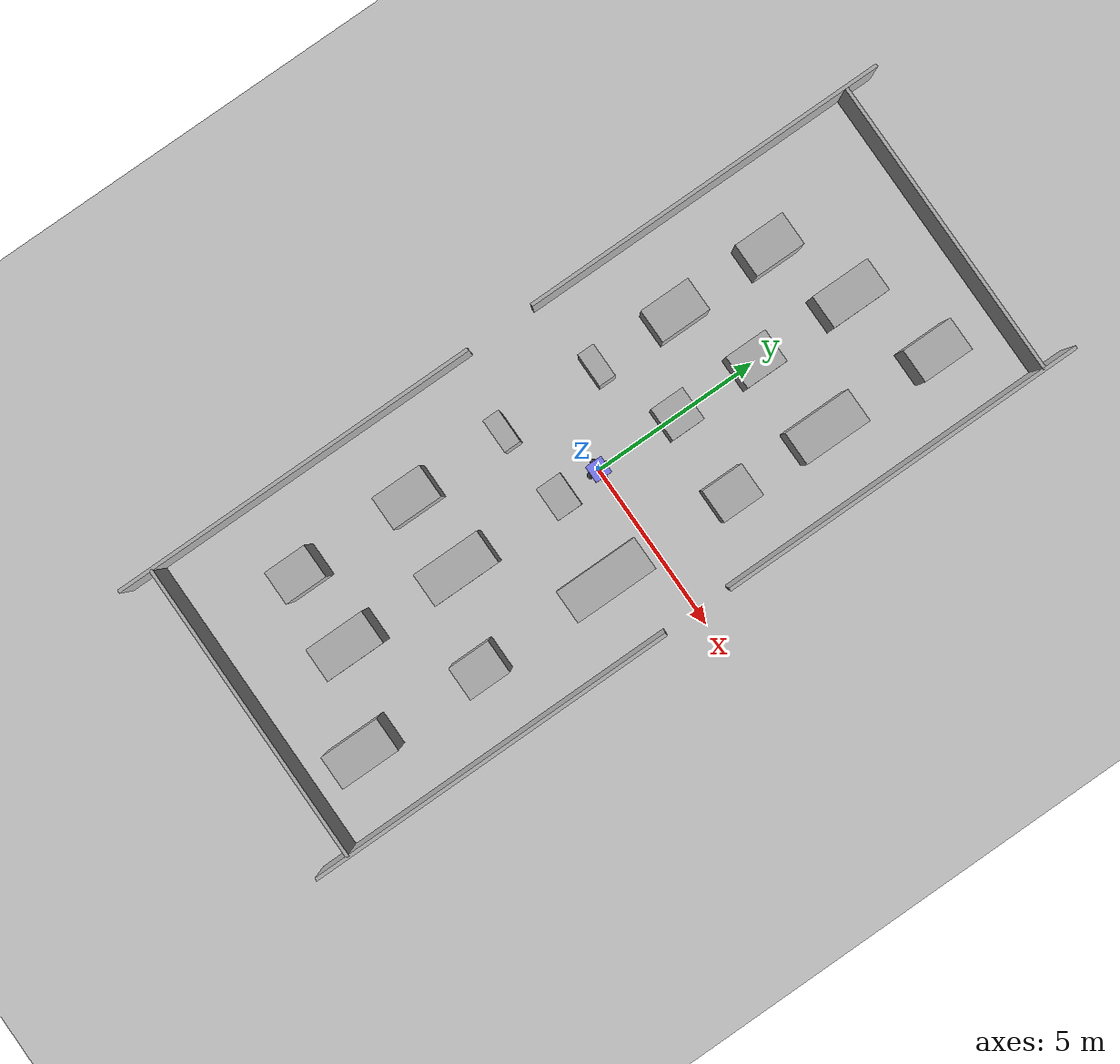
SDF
<?xml version="1.0" ?>
<sdf version="1.8">
  <world name="demo">
    <physics name="1ms" type="ignored">
      <max_step_size>0.001</max_step_size>
      <real_time_factor>1.0</real_time_factor>
    </physics>
    <plugin
      filename="gz-sim-physics-system"
      name="gz::sim::systems::Physics">
    </plugin>
    <plugin
      filename="gz-sim-sensors-system"
      name="gz::sim::systems::Sensors">
      <render_engine>ogre2</render_engine>
    </plugin>
    <plugin
      filename="gz-sim-imu-system"
      name="gz::sim::systems::Imu">
    </plugin>
    <plugin
      filename="gz-sim-scene-broadcaster-system"
      name="gz::sim::systems::SceneBroadcaster">
    </plugin>
    <plugin
      filename="gz-sim-user-commands-system"
      name="gz::sim::systems::UserCommands">
    </plugin>

    <light name="sun" type="directional">
      <cast_shadows>true</cast_shadows>
      <pose>0 0 10 0 0 0</pose>
      <diffuse>0.8 0.8 0.8 1</diffuse>
      <specular>0.2 0.2 0.2 1</specular>
      <attenuation>
        <range>1000</range>
        <constant>0.9</constant>
        <linear>0.01</linear>
        <quadratic>0.001</quadratic>
      </attenuation>
      <direction>-0.5 0.1 -0.9</direction>
    </light>

    <model name="ground_plane">
      <static>true</static>
      <link name="link">
        <collision name="collision">
          <geometry>
            <plane>
              <normal>0 0 1</normal>
              <size>100 100</size>
            </plane>
          </geometry>
        </collision>
        <visual name="visual">
          <geometry>
            <plane>
              <normal>0 0 1</normal>
              <size>100 100</size>
            </plane>
          </geometry>
          <material>
            <ambient>0.8 0.8 0.8 1</ambient>
            <diffuse>0.8 0.8 0.8 1</diffuse>
            <specular>0.8 0.8 0.8 1</specular>
          </material>
        </visual>
      </link>
    </model>

    <!-- Section 0 -->
    <model name='barrier_up_left'>
      <pose>4.5 -6.5 0.5 0.0 0.0 0.0</pose>
      <link name='barrier_up_left_link'>
        <inertial>
          <inertia>
            <ixx>0.16666</ixx>
            <ixy>0</ixy>
            <ixz>0</ixz>
            <iyy>0.16666</iyy>
            <iyz>0</iyz>
            <izz>0.16666</izz>
          </inertia>
          <mass>1</mass>
          <pose>0 0 0 0 0 0</pose>
        </inertial>
        <collision name='box_collision'>
          <geometry>
            <box>
              <size>0.1 11.0 1</size>
            </box>
          </geometry>
          <surface>
            <friction>
              <ode/>
            </friction>
            <bounce/>
            <contact/>
          </surface>
        </collision>
        <visual name='box_visual'>
          <geometry>
            <box>
              <size>0.1 11.0 1</size>
            </box>
          </geometry>
          <material>
            <ambient>0.300000012 0.300000012 0.300000012 1</ambient>
            <diffuse>0.699999988 0.699999988 0.699999988 1</diffuse>
            <specular>1 1 1 1</specular>
          </material>
        </visual>
        <pose>0 0 0 0 0 0</pose>
        <enable_wind>false</enable_wind>
      </link>
      <static>true</static>
      <self_collide>false</self_collide>
    </model>

    <model name='barrier_up_right'>
      <pose>4.5 6.5 0.5 0.0 0.0 0.0</pose>
      <link name='barrier_up_right_link'>
        <inertial>
          <inertia>
            <ixx>0.16666</ixx>
            <ixy>0</ixy>
            <ixz>0</ixz>
            <iyy>0.16666</iyy>
            <iyz>0</iyz>
            <izz>0.16666</izz>
          </inertia>
          <mass>1</mass>
          <pose>0 0 0 0 0 0</pose>
        </inertial>
        <collision name='box_collision'>
          <geometry>
            <box>
              <size>0.1 11.0 1</size>
            </box>
          </geometry>
          <surface>
            <friction>
              <ode/>
            </friction>
            <bounce/>
            <contact/>
          </surface>
        </collision>
        <visual name='box_visual'>
          <geometry>
            <box>
              <size>0.1 11.0 1</size>
            </box>
          </geometry>
          <material>
            <ambient>0.300000012 0.300000012 0.300000012 1</ambient>
            <diffuse>0.699999988 0.699999988 0.699999988 1</diffuse>
            <specular>1 1 1 1</specular>
          </material>
        </visual>
        <pose>0 0 0 0 0 0</pose>
        <enable_wind>false</enable_wind>
      </link>
      <static>true</static>
      <self_collide>false</self_collide>
    </model>

    <model name='barrier_down_left'>
      <pose>-4.5 -6.5 0.5 0.0 0.0 0.0</pose>
      <link name='barrier_down_left_link'>
        <inertial>
          <inertia>
            <ixx>0.16666</ixx>
            <ixy>0</ixy>
            <ixz>0</ixz>
            <iyy>0.16666</iyy>
            <iyz>0</iyz>
            <izz>0.16666</izz>
          </inertia>
          <mass>1</mass>
          <pose>0 0 0 0 0 0</pose>
        </inertial>
        <collision name='box_collision'>
          <geometry>
            <box>
              <size>0.1 11.0 1</size>
            </box>
          </geometry>
          <surface>
            <friction>
              <ode/>
            </friction>
            <bounce/>
            <contact/>
          </surface>
        </collision>
        <visual name='box_visual'>
          <geometry>
            <box>
              <size>0.1 11.0 1</size>
            </box>
          </geometry>
          <material>
            <ambient>0.300000012 0.300000012 0.300000012 1</ambient>
            <diffuse>0.699999988 0.699999988 0.699999988 1</diffuse>
            <specular>1 1 1 1</specular>
          </material>
        </visual>
        <pose>0 0 0 0 0 0</pose>
        <enable_wind>false</enable_wind>
      </link>
      <static>true</static>
      <self_collide>false</self_collide>
    </model>

    <model name='barrier_down_right'>
      <pose>-4.5 6.5 0.5 0.0 0.0 0.0</pose>
      <link name='barrier_down_right_link'>
        <inertial>
          <inertia>
            <ixx>0.16666</ixx>
            <ixy>0</ixy>
            <ixz>0</ixz>
            <iyy>0.16666</iyy>
            <iyz>0</iyz>
            <izz>0.16666</izz>
          </inertia>
          <mass>1</mass>
          <pose>0 0 0 0 0 0</pose>
        </inertial>
        <collision name='box_collision'>
          <geometry>
            <box>
              <size>0.1 11.0 1</size>
            </box>
          </geometry>
          <surface>
            <friction>
              <ode/>
            </friction>
            <bounce/>
            <contact/>
          </surface>
        </collision>
        <visual name='box_visual'>
          <geometry>
            <box>
              <size>0.1 11.0 1</size>
            </box>
          </geometry>
          <material>
            <ambient>0.300000012 0.300000012 0.300000012 1</ambient>
            <diffuse>0.699999988 0.699999988 0.699999988 1</diffuse>
            <specular>1 1 1 1</specular>
          </material>
        </visual>
        <pose>0 0 0 0 0 0</pose>
        <enable_wind>false</enable_wind>
      </link>
      <static>true</static>
      <self_collide>false</self_collide>
    </model>

    <model name='barrier_left'>
      <pose>0.0 11.0 0.5 0.0 0.0 0.0</pose>
      <link name='barrier_left_link'>
        <inertial>
          <inertia>
            <ixx>0.16666</ixx>
            <ixy>0</ixy>
            <ixz>0</ixz>
            <iyy>0.16666</iyy>
            <iyz>0</iyz>
            <izz>0.16666</izz>
          </inertia>
          <mass>1</mass>
          <pose>0 0 0 0 0 0</pose>
        </inertial>
        <collision name='box_collision'>
          <geometry>
            <box>
              <size>9.0 0.1 1</size>
            </box>
          </geometry>
          <surface>
            <friction>
              <ode/>
            </friction>
            <bounce/>
            <contact/>
          </surface>
        </collision>
        <visual name='box_visual'>
          <geometry>
            <box>
              <size>9.0 0.1 1</size>
            </box>
          </geometry>
          <material>
            <ambient>0.300000012 0.300000012 0.300000012 1</ambient>
            <diffuse>0.699999988 0.699999988 0.699999988 1</diffuse>
            <specular>1 1 1 1</specular>
          </material>
        </visual>
        <pose>0 0 0 0 0 0</pose>
        <enable_wind>false</enable_wind>
      </link>
      <static>true</static>
      <self_collide>false</self_collide>
    </model>

    <model name='barrier_right'>
      <pose>0.0 -11.0 0.5 0.0 0.0 0.0</pose>
      <link name='barrier_right_link'>
        <inertial>
          <inertia>
            <ixx>0.16666</ixx>
            <ixy>0</ixy>
            <ixz>0</ixz>
            <iyy>0.16666</iyy>
            <iyz>0</iyz>
            <izz>0.16666</izz>
          </inertia>
          <mass>1</mass>
          <pose>0 0 0 0 0 0</pose>
        </inertial>
        <collision name='box_collision'>
          <geometry>
            <box>
              <size>9.0 0.1 1</size>
            </box>
          </geometry>
          <surface>
            <friction>
              <ode/>
            </friction>
            <bounce/>
            <contact/>
          </surface>
        </collision>
        <visual name='box_visual'>
          <geometry>
            <box>
              <size>9.0 0.1 1</size>
            </box>
          </geometry>
          <material>
            <ambient>0.300000012 0.300000012 0.300000012 1</ambient>
            <diffuse>0.699999988 0.699999988 0.699999988 1</diffuse>
            <specular>1 1 1 1</specular>
          </material>
        </visual>
        <pose>0 0 0 0 0 0</pose>
        <enable_wind>false</enable_wind>
      </link>
      <static>true</static>
      <self_collide>false</self_collide>
    </model>

    <model name='box_0'>
      <pose>0.0 2.5 0.5 0.0 0.0 0.0</pose>
      <link name='box_0_link'>
        <inertial>
          <inertia>
            <ixx>0.16666</ixx>
            <ixy>0</ixy>
            <ixz>0</ixz>
            <iyy>0.16666</iyy>
            <iyz>0</iyz>
            <izz>0.16666</izz>
          </inertia>
          <mass>1</mass>
          <pose>0 0 0 0 0 0</pose>
        </inertial>
        <collision name='box_collision'>
          <geometry>
            <box>
              <size>1.0 1.0 1</size>
            </box>
          </geometry>
          <surface>
            <friction>
              <ode/>
            </friction>
            <bounce/>
            <contact/>
          </surface>
        </collision>
        <visual name='box_visual'>
          <geometry>
            <box>
              <size>1.0 1.0 1</size>
            </box>
          </geometry>
          <material>
            <ambient>0.300000012 0.300000012 0.300000012 1</ambient>
            <diffuse>0.699999988 0.699999988 0.699999988 1</diffuse>
            <specular>1 1 1 1</specular>
          </material>
        </visual>
        <pose>0 0 0 0 0 0</pose>
        <enable_wind>false</enable_wind>
      </link>
      <static>true</static>
      <self_collide>false</self_collide>
    </model>

    <model name='box_1'>
      <pose>0.0 -1.25 0.5 0.0 0.0 0.0</pose>
      <link name='box_1_link'>
        <inertial>
          <inertia>
            <ixx>0.16666</ixx>
            <ixy>0</ixy>
            <ixz>0</ixz>
            <iyy>0.16666</iyy>
            <iyz>0</iyz>
            <izz>0.16666</izz>
          </inertia>
          <mass>1</mass>
          <pose>0 0 0 0 0 0</pose>
        </inertial>
        <collision name='box_collision'>
          <geometry>
            <box>
              <size>1.0 0.75 1</size>
            </box>
          </geometry>
          <surface>
            <friction>
              <ode/>
            </friction>
            <bounce/>
            <contact/>
          </surface>
        </collision>
        <visual name='box_visual'>
          <geometry>
            <box>
              <size>1.0 0.75 1</size>
            </box>
          </geometry>
          <material>
            <ambient>0.300000012 0.300000012 0.300000012 1</ambient>
            <diffuse>0.699999988 0.699999988 0.699999988 1</diffuse>
            <specular>1 1 1 1</specular>
          </material>
        </visual>
        <pose>0 0 0 0 0 0</pose>
        <enable_wind>false</enable_wind>
      </link>
      <static>true</static>
      <self_collide>false</self_collide>
    </model>

    <model name='box_0_1'>
      <pose>0.0 5.0 0.5 0.0 0.0 0.0</pose>
      <link name='box_0_1_link'>
        <inertial>
          <inertia>
            <ixx>0.16666</ixx>
            <ixy>0</ixy>
            <ixz>0</ixz>
            <iyy>0.16666</iyy>
            <iyz>0</iyz>
            <izz>0.16666</izz>
          </inertia>
          <mass>1</mass>
          <pose>0 0 0 0 0 0</pose>
        </inertial>
        <collision name='box_collision'>
          <geometry>
            <box>
              <size>1.0 1.25 1</size>
            </box>
          </geometry>
          <surface>
            <friction>
              <ode/>
            </friction>
            <bounce/>
            <contact/>
          </surface>
        </collision>
        <visual name='box_visual'>
          <geometry>
            <box>
              <size>1.0 1.25 1</size>
            </box>
          </geometry>
          <material>
            <ambient>0.300000012 0.300000012 0.300000012 1</ambient>
            <diffuse>0.699999988 0.699999988 0.699999988 1</diffuse>
            <specular>1 1 1 1</specular>
          </material>
        </visual>
        <pose>0 0 0 0 0 0</pose>
        <enable_wind>false</enable_wind>
      </link>
      <static>true</static>
      <self_collide>false</self_collide>
    </model>

    <model name='box_1_1'>
      <pose>0.0 -4.5 0.5 0.0 0.0 0.0</pose>
      <link name='box_1_1_link'>
        <inertial>
          <inertia>
            <ixx>0.16666</ixx>
            <ixy>0</ixy>
            <ixz>0</ixz>
            <iyy>0.16666</iyy>
            <iyz>0</iyz>
            <izz>0.16666</izz>
          </inertia>
          <mass>1</mass>
          <pose>0 0 0 0 0 0</pose>
        </inertial>
        <collision name='box_collision'>
          <geometry>
            <box>
              <size>1.0 2.0 1</size>
            </box>
          </geometry>
          <surface>
            <friction>
              <ode/>
            </friction>
            <bounce/>
            <contact/>
          </surface>
        </collision>
        <visual name='box_visual'>
          <geometry>
            <box>
              <size>1.0 2.0 1</size>
            </box>
          </geometry>
          <material>
            <ambient>0.300000012 0.300000012 0.300000012 1</ambient>
            <diffuse>0.699999988 0.699999988 0.699999988 1</diffuse>
            <specular>1 1 1 1</specular>
          </material>
        </visual>
        <pose>0 0 0 0 0 0</pose>
        <enable_wind>false</enable_wind>
      </link>
      <static>true</static>
      <self_collide>false</self_collide>
    </model>

    <model name='box_0_2'>
      <pose>0.0 8.0 0.5 0.0 0.0 0.0</pose>
      <link name='box_0_2_link'>
        <inertial>
          <inertia>
            <ixx>0.16666</ixx>
            <ixy>0</ixy>
            <ixz>0</ixz>
            <iyy>0.16666</iyy>
            <iyz>0</iyz>
            <izz>0.16666</izz>
          </inertia>
          <mass>1</mass>
          <pose>0 0 0 0 0 0</pose>
        </inertial>
        <collision name='box_collision'>
          <geometry>
            <box>
              <size>1.0 1.75 1</size>
            </box>
          </geometry>
          <surface>
            <friction>
              <ode/>
            </friction>
            <bounce/>
            <contact/>
          </surface>
        </collision>
        <visual name='box_visual'>
          <geometry>
            <box>
              <size>1.0 1.75 1</size>
            </box>
          </geometry>
          <material>
            <ambient>0.300000012 0.300000012 0.300000012 1</ambient>
            <diffuse>0.699999988 0.699999988 0.699999988 1</diffuse>
            <specular>1 1 1 1</specular>
          </material>
        </visual>
        <pose>0 0 0 0 0 0</pose>
        <enable_wind>false</enable_wind>
      </link>
      <static>true</static>
      <self_collide>false</self_collide>
    </model>

    <model name='box_1_2'>
      <pose>0.0 -8.0 0.5 0.0 0.0 0.0</pose>
      <link name='box_1_2_link'>
        <inertial>
          <inertia>
            <ixx>0.16666</ixx>
            <ixy>0</ixy>
            <ixz>0</ixz>
            <iyy>0.16666</iyy>
            <iyz>0</iyz>
            <izz>0.16666</izz>
          </inertia>
          <mass>1</mass>
          <pose>0 0 0 0 0 0</pose>
        </inertial>
        <collision name='box_collision'>
          <geometry>
            <box>
              <size>1.0 1.75 1</size>
            </box>
          </geometry>
          <surface>
            <friction>
              <ode/>
            </friction>
            <bounce/>
            <contact/>
          </surface>
        </collision>
        <visual name='box_visual'>
          <geometry>
            <box>
              <size>1.0 1.75 1</size>
            </box>
          </geometry>
          <material>
            <ambient>0.300000012 0.300000012 0.300000012 1</ambient>
            <diffuse>0.699999988 0.699999988 0.699999988 1</diffuse>
            <specular>1 1 1 1</specular>
          </material>
        </visual>
        <pose>0 0 0 0 0 0</pose>
        <enable_wind>false</enable_wind>
      </link>
      <static>true</static>
      <self_collide>false</self_collide>
    </model>

    <model name='box_2'>
      <pose>2.5 2.5 0.5 0.0 0.0 0.0</pose>
      <link name='box_2_link'>
        <inertial>
          <inertia>
            <ixx>0.16666</ixx>
            <ixy>0</ixy>
            <ixz>0</ixz>
            <iyy>0.16666</iyy>
            <iyz>0</iyz>
            <izz>0.16666</izz>
          </inertia>
          <mass>1</mass>
          <pose>0 0 0 0 0 0</pose>
        </inertial>
        <collision name='box_collision'>
          <geometry>
            <box>
              <size>1.0 1.25 1</size>
            </box>
          </geometry>
          <surface>
            <friction>
              <ode/>
            </friction>
            <bounce/>
            <contact/>
          </surface>
        </collision>
        <visual name='box_visual'>
          <geometry>
            <box>
              <size>1.0 1.25 1</size>
            </box>
          </geometry>
          <material>
            <ambient>0.300000012 0.300000012 0.300000012 1</ambient>
            <diffuse>0.699999988 0.699999988 0.699999988 1</diffuse>
            <specular>1 1 1 1</specular>
          </material>
        </visual>
        <pose>0 0 0 0 0 0</pose>
        <enable_wind>false</enable_wind>
      </link>
      <static>true</static>
      <self_collide>false</self_collide>
    </model>

    <model name='box_3'>
      <pose>2.5 -1.5 0.0 0.0 0.0 0.0</pose>
      <link name='box_3_link'>
        <inertial>
          <inertia>
            <ixx>0.16666</ixx>
            <ixy>0</ixy>
            <ixz>0</ixz>
            <iyy>0.16666</iyy>
            <iyz>0</iyz>
            <izz>0.16666</izz>
          </inertia>
          <mass>1</mass>
          <pose>0 0 0 0 0 0</pose>
        </inertial>
        <collision name='box_collision'>
          <geometry>
            <box>
              <size>1.0 2.5 1</size>
            </box>
          </geometry>
          <surface>
            <friction>
              <ode/>
            </friction>
            <bounce/>
            <contact/>
          </surface>
        </collision>
        <visual name='box_visual'>
          <geometry>
            <box>
              <size>1.0 2.5 1</size>
            </box>
          </geometry>
          <material>
            <ambient>0.300000012 0.300000012 0.300000012 1</ambient>
            <diffuse>0.699999988 0.699999988 0.699999988 1</diffuse>
            <specular>1 1 1 1</specular>
          </material>
        </visual>
        <pose>0 0 0 0 0 0</pose>
        <enable_wind>false</enable_wind>
      </link>
      <static>true</static>
      <self_collide>false</self_collide>
    </model>

    <model name='box_2_1'>
      <pose>2.5 5.5 0.5 0.0 0.0 0.0</pose>
      <link name='box_2_1_link'>
        <inertial>
          <inertia>
            <ixx>0.16666</ixx>
            <ixy>0</ixy>
            <ixz>0</ixz>
            <iyy>0.16666</iyy>
            <iyz>0</iyz>
            <izz>0.16666</izz>
          </inertia>
          <mass>1</mass>
          <pose>0 0 0 0 0 0</pose>
        </inertial>
        <collision name='box_collision'>
          <geometry>
            <box>
              <size>1.0 2.0 1</size>
            </box>
          </geometry>
          <surface>
            <friction>
              <ode/>
            </friction>
            <bounce/>
            <contact/>
          </surface>
        </collision>
        <visual name='box_visual'>
          <geometry>
            <box>
              <size>1.0 2.0 1</size>
            </box>
          </geometry>
          <material>
            <ambient>0.300000012 0.300000012 0.300000012 1</ambient>
            <diffuse>0.699999988 0.699999988 0.699999988 1</diffuse>
            <specular>1 1 1 1</specular>
          </material>
        </visual>
        <pose>0 0 0 0 0 0</pose>
        <enable_wind>false</enable_wind>
      </link>
      <static>true</static>
      <self_collide>false</self_collide>
    </model>

    <model name='box_3_1'>
      <pose>2.5 -5.5 0.5 0.0 0.0 0.0</pose>
      <link name='box_3_1_link'>
        <inertial>
          <inertia>
            <ixx>0.16666</ixx>
            <ixy>0</ixy>
            <ixz>0</ixz>
            <iyy>0.16666</iyy>
            <iyz>0</iyz>
            <izz>0.16666</izz>
          </inertia>
          <mass>1</mass>
          <pose>0 0 0 0 0 0</pose>
        </inertial>
        <collision name='box_collision'>
          <geometry>
            <box>
              <size>1.0 1.25 1</size>
            </box>
          </geometry>
          <surface>
            <friction>
              <ode/>
            </friction>
            <bounce/>
            <contact/>
          </surface>
        </collision>
        <visual name='box_visual'>
          <geometry>
            <box>
              <size>1.0 1.25 1</size>
            </box>
          </geometry>
          <material>
            <ambient>0.300000012 0.300000012 0.300000012 1</ambient>
            <diffuse>0.699999988 0.699999988 0.699999988 1</diffuse>
            <specular>1 1 1 1</specular>
          </material>
        </visual>
        <pose>0 0 0 0 0 0</pose>
        <enable_wind>false</enable_wind>
      </link>
      <static>true</static>
      <self_collide>false</self_collide>
    </model>

    <model name='box_2_2'>
      <pose>2.5 9.0 0.5 0.0 0.0 0.0</pose>
      <link name='box_2_2_link'>
        <inertial>
          <inertia>
            <ixx>0.16666</ixx>
            <ixy>0</ixy>
            <ixz>0</ixz>
            <iyy>0.16666</iyy>
            <iyz>0</iyz>
            <izz>0.16666</izz>
          </inertia>
          <mass>1</mass>
          <pose>0 0 0 0 0 0</pose>
        </inertial>
        <collision name='box_collision'>
          <geometry>
            <box>
              <size>1.0 1.5 1</size>
            </box>
          </geometry>
          <surface>
            <friction>
              <ode/>
            </friction>
            <bounce/>
            <contact/>
          </surface>
        </collision>
        <visual name='box_visual'>
          <geometry>
            <box>
              <size>1.0 1.5 1</size>
            </box>
          </geometry>
          <material>
            <ambient>0.300000012 0.300000012 0.300000012 1</ambient>
            <diffuse>0.699999988 0.699999988 0.699999988 1</diffuse>
            <specular>1 1 1 1</specular>
          </material>
        </visual>
        <pose>0 0 0 0 0 0</pose>
        <enable_wind>false</enable_wind>
      </link>
      <static>true</static>
      <self_collide>false</self_collide>
    </model>

    <model name='box_3_2'>
      <pose>2.5 -9.25 0.5 0.0 0.0 0.0</pose>
      <link name='box_3_2_link'>
        <inertial>
          <inertia>
            <ixx>0.16666</ixx>
            <ixy>0</ixy>
            <ixz>0</ixz>
            <iyy>0.16666</iyy>
            <iyz>0</iyz>
            <izz>0.16666</izz>
          </inertia>
          <mass>1</mass>
          <pose>0 0 0 0 0 0</pose>
        </inertial>
        <collision name='box_collision'>
          <geometry>
            <box>
              <size>1.0 1.75 1</size>
            </box>
          </geometry>
          <surface>
            <friction>
              <ode/>
            </friction>
            <bounce/>
            <contact/>
          </surface>
        </collision>
        <visual name='box_visual'>
          <geometry>
            <box>
              <size>1.0 1.75 1</size>
            </box>
          </geometry>
          <material>
            <ambient>0.300000012 0.300000012 0.300000012 1</ambient>
            <diffuse>0.699999988 0.699999988 0.699999988 1</diffuse>
            <specular>1 1 1 1</specular>
          </material>
        </visual>
        <pose>0 0 0 0 0 0</pose>
        <enable_wind>false</enable_wind>
      </link>
      <static>true</static>
      <self_collide>false</self_collide>
    </model>

    <model name='box_4'>
      <pose>-2.25 1.5 0.5 0.0 0.0 0.0</pose>
      <link name='box_4_link'>
        <inertial>
          <inertia>
            <ixx>0.16666</ixx>
            <ixy>0</ixy>
            <ixz>0</ixz>
            <iyy>0.16666</iyy>
            <iyz>0</iyz>
            <izz>0.16666</izz>
          </inertia>
          <mass>1</mass>
          <pose>0 0 0 0 0 0</pose>
        </inertial>
        <collision name='box_collision'>
          <geometry>
            <box>
              <size>1.0 0.5 1</size>
            </box>
          </geometry>
          <surface>
            <friction>
              <ode/>
            </friction>
            <bounce/>
            <contact/>
          </surface>
        </collision>
        <visual name='box_visual'>
          <geometry>
            <box>
              <size>1.0 0.5 1</size>
            </box>
          </geometry>
          <material>
            <ambient>0.300000012 0.300000012 0.300000012 1</ambient>
            <diffuse>0.699999988 0.699999988 0.699999988 1</diffuse>
            <specular>1 1 1 1</specular>
          </material>
        </visual>
        <pose>0 0 0 0 0 0</pose>
        <enable_wind>false</enable_wind>
      </link>
      <static>true</static>
      <self_collide>false</self_collide>
    </model>

    <model name='box_5'>
      <pose>-2.25 -1.5 0.5 0.0 0.0 0.0</pose>
      <link name='box_5_link'>
        <inertial>
          <inertia>
            <ixx>0.16666</ixx>
            <ixy>0</ixy>
            <ixz>0</ixz>
            <iyy>0.16666</iyy>
            <iyz>0</iyz>
            <izz>0.16666</izz>
          </inertia>
          <mass>1</mass>
          <pose>0 0 0 0 0 0</pose>
        </inertial>
        <collision name='box_collision'>
          <geometry>
            <box>
              <size>1.0 0.5 1</size>
            </box>
          </geometry>
          <surface>
            <friction>
              <ode/>
            </friction>
            <bounce/>
            <contact/>
          </surface>
        </collision>
        <visual name='box_visual'>
          <geometry>
            <box>
              <size>1.0 0.5 1</size>
            </box>
          </geometry>
          <material>
            <ambient>0.300000012 0.300000012 0.300000012 1</ambient>
            <diffuse>0.699999988 0.699999988 0.699999988 1</diffuse>
            <specular>1 1 1 1</specular>
          </material>
        </visual>
        <pose>0 0 0 0 0 0</pose>
        <enable_wind>false</enable_wind>
      </link>
      <static>true</static>
      <self_collide>false</self_collide>
    </model>

    <model name='box_4_1'>
      <pose>-2.25 -4.5 0.5 0.0 0.0 0.0</pose>
      <link name='box_4_1_link'>
        <inertial>
          <inertia>
            <ixx>0.16666</ixx>
            <ixy>0</ixy>
            <ixz>0</ixz>
            <iyy>0.16666</iyy>
            <iyz>0</iyz>
            <izz>0.16666</izz>
          </inertia>
          <mass>1</mass>
          <pose>0 0 0 0 0 0</pose>
        </inertial>
        <collision name='box_collision'>
          <geometry>
            <box>
              <size>1.0 1.5 1</size>
            </box>
          </geometry>
          <surface>
            <friction>
              <ode/>
            </friction>
            <bounce/>
            <contact/>
          </surface>
        </collision>
        <visual name='box_visual'>
          <geometry>
            <box>
              <size>1.0 1.5 1</size>
            </box>
          </geometry>
          <material>
            <ambient>0.300000012 0.300000012 0.300000012 1</ambient>
            <diffuse>0.699999988 0.699999988 0.699999988 1</diffuse>
            <specular>1 1 1 1</specular>
          </material>
        </visual>
        <pose>0 0 0 0 0 0</pose>
        <enable_wind>false</enable_wind>
      </link>
      <static>true</static>
      <self_collide>false</self_collide>
    </model>

    <model name='box_5_1'>
      <pose>-2.25 4.0 0.5 0.0 0.0 0.0</pose>
      <link name='box_5_1_link'>
        <inertial>
          <inertia>
            <ixx>0.16666</ixx>
            <ixy>0</ixy>
            <ixz>0</ixz>
            <iyy>0.16666</iyy>
            <iyz>0</iyz>
            <izz>0.16666</izz>
          </inertia>
          <mass>1</mass>
          <pose>0 0 0 0 0 0</pose>
        </inertial>
        <collision name='box_collision'>
          <geometry>
            <box>
              <size>1.0 1.5 1</size>
            </box>
          </geometry>
          <surface>
            <friction>
              <ode/>
            </friction>
            <bounce/>
            <contact/>
          </surface>
        </collision>
        <visual name='box_visual'>
          <geometry>
            <box>
              <size>1.0 1.5 1</size>
            </box>
          </geometry>
          <material>
            <ambient>0.300000012 0.300000012 0.300000012 1</ambient>
            <diffuse>0.699999988 0.699999988 0.699999988 1</diffuse>
            <specular>1 1 1 1</specular>
          </material>
        </visual>
        <pose>0 0 0 0 0 0</pose>
        <enable_wind>false</enable_wind>
      </link>
      <static>true</static>
      <self_collide>false</self_collide>
    </model>

    <model name='box_4_2'>
      <pose>-2.25 -8.0 0.5 0.0 0.0 0.0</pose>
      <link name='box_4_2_link'>
        <inertial>
          <inertia>
            <ixx>0.16666</ixx>
            <ixy>0</ixy>
            <ixz>0</ixz>
            <iyy>0.16666</iyy>
            <iyz>0</iyz>
            <izz>0.16666</izz>
          </inertia>
          <mass>1</mass>
          <pose>0 0 0 0 0 0</pose>
        </inertial>
        <collision name='box_collision'>
          <geometry>
            <box>
              <size>1.0 1.25 1</size>
            </box>
          </geometry>
          <surface>
            <friction>
              <ode/>
            </friction>
            <bounce/>
            <contact/>
          </surface>
        </collision>
        <visual name='box_visual'>
          <geometry>
            <box>
              <size>1.0 1.25 1</size>
            </box>
          </geometry>
          <material>
            <ambient>0.300000012 0.300000012 0.300000012 1</ambient>
            <diffuse>0.699999988 0.699999988 0.699999988 1</diffuse>
            <specular>1 1 1 1</specular>
          </material>
        </visual>
        <pose>0 0 0 0 0 0</pose>
        <enable_wind>false</enable_wind>
      </link>
      <static>true</static>
      <self_collide>false</self_collide>
    </model>

    <model name='box_5_2'>
      <pose>-2.25 7.0 0.5 0.0 0.0 0.0</pose>
      <link name='box_5_2_link'>
        <inertial>
          <inertia>
            <ixx>0.16666</ixx>
            <ixy>0</ixy>
            <ixz>0</ixz>
            <iyy>0.16666</iyy>
            <iyz>0</iyz>
            <izz>0.16666</izz>
          </inertia>
          <mass>1</mass>
          <pose>0 0 0 0 0 0</pose>
        </inertial>
        <collision name='box_collision'>
          <geometry>
            <box>
              <size>1.0 1.5 1</size>
            </box>
          </geometry>
          <surface>
            <friction>
              <ode/>
            </friction>
            <bounce/>
            <contact/>
          </surface>
        </collision>
        <visual name='box_visual'>
          <geometry>
            <box>
              <size>1.0 1.5 1</size>
            </box>
          </geometry>
          <material>
            <ambient>0.300000012 0.300000012 0.300000012 1</ambient>
            <diffuse>0.699999988 0.699999988 0.699999988 1</diffuse>
            <specular>1 1 1 1</specular>
          </material>
        </visual>
        <pose>0 0 0 0 0 0</pose>
        <enable_wind>false</enable_wind>
      </link>
      <static>true</static>
      <self_collide>false</self_collide>
    </model>
    <!-- _Section 0 -->

    <model name="diff_drive">
      <self_collide>true</self_collide>
      <pose>0 0 0.225 0 0 0</pose>
      <include merge="true">
        <uri>package://gz_worlds/models/diff_drive</uri>
      </include>

      <plugin
        filename="gz-sim-joint-state-publisher-system"
        name="gz::sim::systems::JointStatePublisher">
      </plugin>

      <plugin
        filename="gz-sim-pose-publisher-system"
        name="gz::sim::systems::PosePublisher">
        <publish_link_pose>false</publish_link_pose>
        <use_pose_vector_msg>false</use_pose_vector_msg>
        <static_publisher>false</static_publisher>
        <static_update_frequency>1</static_update_frequency>
      </plugin>

    </model>

  </world>
</sdf>

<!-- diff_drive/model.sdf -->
<sdf version="1.8">
    <model name='diff_drive'>
      <link name='base_link'>
        <pose>0.0 -0 0.175 0 -0 0</pose>
        <inertial>
          <mass>1.14395</mass>
          <inertia>
            <ixx>0.126164</ixx>
            <ixy>0</ixy>
            <ixz>0</ixz>
            <iyy>0.416519</iyy>
            <iyz>0</iyz>
            <izz>0.481014</izz>
          </inertia>
        </inertial>
        <visual name='visual_base_link'>
          <geometry>
            <box>
              <size>0.5 0.5 0.568726</size>
            </box>
          </geometry>
          <material>
            <ambient>0.5 0.5 1.0 1</ambient>
            <diffuse>0.5 0.5 1.0 1</diffuse>
            <specular>0.0 0.0 1.0 1</specular>
          </material>
        </visual>
        <collision name='collision_base_link'>
          <geometry>
            <box>
              <size>0.5 0.5 0.568726</size>
            </box>
          </geometry>
        </collision>
      </link>

      <link name='left_wheel'>
        <pose>0.0 0.25 -0.125 -1.5707 0 0</pose>
        <inertial>
          <mass>2</mass>
          <inertia>
            <ixx>0.145833</ixx>
            <ixy>0</ixy>
            <ixz>0</ixz>
            <iyy>0.145833</iyy>
            <iyz>0</iyz>
            <izz>0.125</izz>
          </inertia>
        </inertial>
        <visual name='visual_left_wheel'>
          <geometry>
            <sphere>
              <radius>0.1</radius>
            </sphere>
          </geometry>
          <material>
            <ambient>0.2 0.2 0.2 1</ambient>
            <diffuse>0.2 0.2 0.2 1</diffuse>
            <specular>0.2 0.2 0.2 1</specular>
          </material>
        </visual>
        <collision name='collision_left_wheel'>
          <geometry>
            <sphere>
              <radius>0.1</radius>
            </sphere>
          </geometry>
        </collision>
      </link>

      <link name='right_wheel'>
        <pose>0.0 -0.25 -0.125 -1.5707 0 0</pose>
        <inertial>
          <mass>2</mass>
          <inertia>
            <ixx>0.145833</ixx>
            <ixy>0</ixy>
            <ixz>0</ixz>
            <iyy>0.145833</iyy>
            <iyz>0</iyz>
            <izz>0.125</izz>
          </inertia>
        </inertial>
        <visual name='visual_right_wheel'>
          <geometry>
            <sphere>
              <radius>0.1</radius>
            </sphere>
          </geometry>
          <material>
            <ambient>0.2 0.2 0.2 1</ambient>
            <diffuse>0.2 0.2 0.2 1</diffuse>
            <specular>0.2 0.2 0.2 1</specular>
          </material>
        </visual>
        <collision name='collision_right_wheel'>
          <geometry>
            <sphere>
              <radius>0.1</radius>
            </sphere>
          </geometry>
        </collision>
      </link>

      <link name='caster_0'>
        <pose>0.25 0 -0.125 0 -0 0</pose>
        <inertial>
          <mass>1</mass>
          <inertia>
            <ixx>0.1</ixx>
            <ixy>0</ixy>
            <ixz>0</ixz>
            <iyy>0.1</iyy>
            <iyz>0</iyz>
            <izz>0.1</izz>
          </inertia>
        </inertial>
        <visual name='visual_caster'>
          <geometry>
            <sphere>
              <radius>0.1</radius>
            </sphere>
          </geometry>
          <material>
            <ambient>0.2 0.2 0.2 1</ambient>
            <diffuse>0.2 0.2 0.2 1</diffuse>
            <specular>0.2 0.2 0.2 1</specular>
          </material>
        </visual>
        <collision name='collision_caster'>
          <geometry>
            <sphere>
              <radius>0.1</radius>
            </sphere>
          </geometry>
        </collision>
      </link>

      <link name='caster_1'>
        <pose>-0.25 -0 -0.125 0 -0 0</pose>
        <inertial>
          <mass>1</mass>
          <inertia>
            <ixx>0.1</ixx>
            <ixy>0</ixy>
            <ixz>0</ixz>
            <iyy>0.1</iyy>
            <iyz>0</iyz>
            <izz>0.1</izz>
          </inertia>
        </inertial>
        <visual name='visual_caster'>
          <geometry>
            <sphere>
              <radius>0.1</radius>
            </sphere>
          </geometry>
          <material>
            <ambient>0.2 0.2 0.2 1</ambient>
            <diffuse>0.2 0.2 0.2 1</diffuse>
            <specular>0.2 0.2 0.2 1</specular>
          </material>
        </visual>
        <collision name='collision_caster'>
          <geometry>
            <sphere>
              <radius>0.1</radius>
            </sphere>
          </geometry>
        </collision>
      </link>

      <link name="lidar_link">
        <pose>0 0 0.60 0 0 0</pose>
        <inertial>
          <mass>0.1</mass>
          <inertia>
            <ixx>0.000166667</ixx>
            <iyy>0.000166667</iyy>
            <izz>0.000166667</izz>
          </inertia>
        </inertial>
        <collision name="collision">
          <geometry>
            <box>
              <size>0.1 0.1 0.1</size>
            </box>
          </geometry>
        </collision>
        <visual name="visual">
          <geometry>
            <box>
              <size>0.1 0.1 0.1</size>
            </box>
          </geometry>
        </visual>
        <sensor name='gpu_lidar' type='gpu_lidar'>
          <pose>0 0 0 0 0 0</pose>
          <topic>model/diff_drive/lidar</topic>
          <gz_frame_id>diff_drive/lidar_link</gz_frame_id>
          <update_rate>1</update_rate>
          <lidar>
            <scan>
              <horizontal>
                <samples>1200</samples>
                <resolution>1</resolution>
                <min_angle>-2.7</min_angle>
                <max_angle>2.7</max_angle>
              </horizontal>
              <vertical>
                <samples>16</samples>
                <resolution>1</resolution>
                <min_angle>-0.261799</min_angle>
                <max_angle>0.261799</max_angle>
              </vertical>
            </scan>
            <range>
              <min>0.08</min>
              <max>10.0</max>
              <resolution>0.01</resolution>
            </range>
          </lidar>
          <visualize>true</visualize>
        </sensor>
      </link>

      <joint name='lidar_joint' type='fixed'>
        <child>lidar_link</child>
        <parent>base_link</parent>
      </joint>

      <!-- Define the IMU link -->
      <link name="imu_link">
      <!-- IMU link properties go here -->
        <!-- Define the IMU sensor -->
        <sensor name="imu_sensor" type="imu">
          <gz_frame_id>diff_drive/imu_link</gz_frame_id>
          <always_on>1</always_on>
	      <update_rate>100</update_rate>
	      <visualize>true</visualize>
	      <topic>model/diff_drive/imu</topic>
          <enable_metrics>true</enable_metrics>
          <parent>imu_link</parent> <!-- Attach the sensor to the IMU link -->
        </sensor>
      </link>

      <!-- Define the IMU joint -->
      <joint name="imu_joint" type="fixed">
	    <child>imu_link</child>
        <parent>base_link</parent> <!-- Replace with the parent link name -->
        <pose>0 0 0 0 0 0</pose>
      </joint>

      <joint name='left_wheel_joint' type='revolute'>
        <child>left_wheel</child>
        <parent>base_link</parent>
        <axis>
          <xyz>0 0 1</xyz>
          <limit>
            <lower>-1.79769e+308</lower>
            <upper>1.79769e+308</upper>
          </limit>
        </axis>
      </joint>

      <joint name='right_wheel_joint' type='revolute'>
        <child>right_wheel</child>
        <parent>base_link</parent>
        <axis>
          <xyz>0 0 1</xyz>
          <limit>
            <lower>-1.79769e+308</lower>
            <upper>1.79769e+308</upper>
          </limit>
        </axis>
      </joint>

      <joint name='caster_0_joint' type='ball'>
        <child>caster_0</child>
        <parent>base_link</parent>
      </joint>

      <joint name='caster_1_joint' type='ball'>
        <child>caster_1</child>
        <parent>base_link</parent>
      </joint>

      <link name="navsat_link">
        <pose>0 0.0 0.05 0 0 0</pose>
        <inertial>
          <mass>0.1</mass>
          <inertia>
            <ixx>0.000166667</ixx>
            <iyy>0.000166667</iyy>
            <izz>0.000166667</izz>
          </inertia>
        </inertial>
        <collision name="collision">
          <geometry>
            <box>
              <size>0.1 0.1 0.1</size>
            </box>
          </geometry>
        </collision>
        <visual name="visual">
          <geometry>
            <box>
              <size>0.1 0.1 0.1</size>
            </box>
          </geometry>
        </visual>
        <sensor name='navsat' type='navsat'>
          <topic>model/diff_drive/navsat</topic>
          <gz_frame_id>diff_drive/navsat_link</gz_frame_id>
          <update_rate>1</update_rate>
          <always_on>1</always_on>
        </sensor>
      </link>

      <joint name='navsat_joint' type='fixed'>
        <child>navsat_link</child>
        <parent>base_link</parent>
      </joint>

      <plugin
        filename="gz-sim-diff-drive-system"
        name="gz::sim::systems::DiffDrive">
        <left_joint>left_wheel_joint</left_joint>
        <right_joint>right_wheel_joint</right_joint>
        <wheel_separation>0.50</wheel_separation>
        <wheel_radius>0.1</wheel_radius>
        <frame_id>diff_drive/odom</frame_id>
        <child_id>diff_drive/base_link</child_id>
        <odom_publish_frequency>50</odom_publish_frequency>
        <max_linear_acceleration>1</max_linear_acceleration>
        <min_linear_acceleration>-1</min_linear_acceleration>
        <max_angular_acceleration>2</max_angular_acceleration>
        <min_angular_acceleration>-2</min_angular_acceleration>
        <max_linear_velocity>1.0</max_linear_velocity>
        <min_linear_velocity>-1.0</min_linear_velocity>
        <max_angular_velocity>1</max_angular_velocity>
        <min_angular_velocity>-1</min_angular_velocity>
      </plugin>
    </model>
</sdf>
